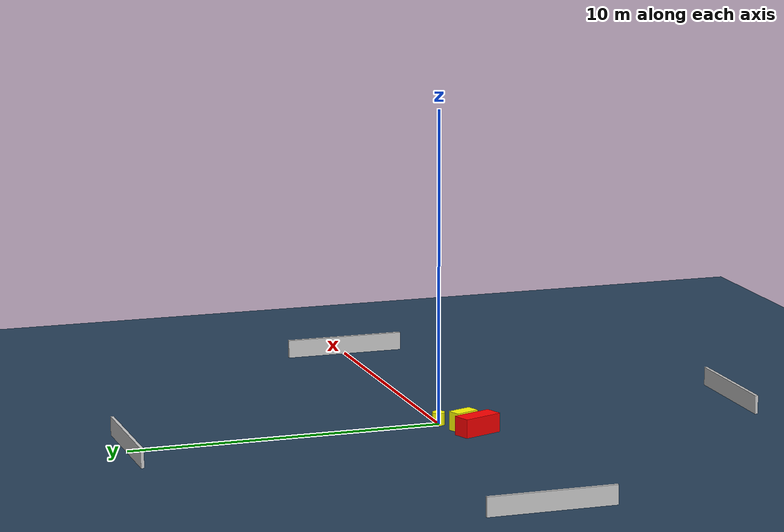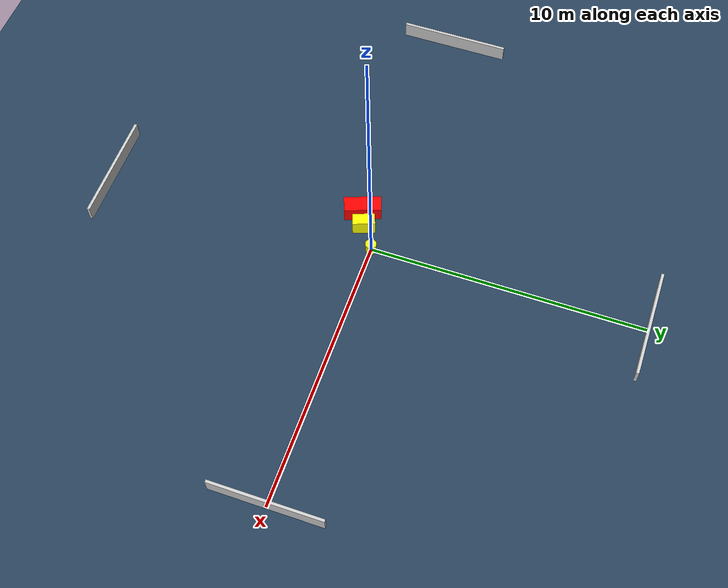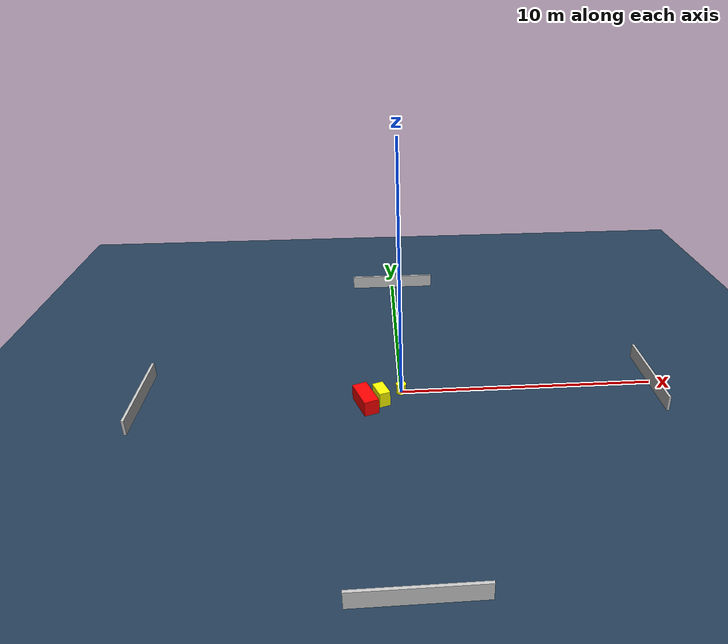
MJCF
<?xml version="1.0" ?>
<mujoco model="generated_environment">
  <option timestep="0.01" integrator="RK4" cone="elliptic"/>
  <default>
    <geom density="1"/>
  </default>
  <asset>
    <texture builtin="gradient" height="3072" name="skybox" rgb1="0.3 0.5 0.7" rgb2="0 0 0" type="skybox" width="512"/>
    <texture builtin="checker" height="300" name="groundplane" rgb1="0.2 0.3 0.4" rgb2="0.1 0.2 0.3" type="2d" width="300"/>
    <material name="groundplane" reflectance="0.2" texrepeat="5 5" texture="groundplane"/>
  </asset>
  <worldbody>
    <light dir="0 0 -1" directional="true" pos="0 0 1.5"/>
    <geom condim="3" friction="0.5 0.005 0.001" material="groundplane" name="floor" pos="0 0 0" size="0 0 0.05" type="plane"/>
    <body name="walls">
      <geom name="wall_1" condim="4" pos="-10.0 0.0 0.3" rgba="0.800000011920929 0.800000011920929 0.800000011920929 1.0" size="0.05 2.0 0.3" type="box"/>
      <geom name="wall_2" condim="4" pos="10.0 0.0 0.3" rgba="0.800000011920929 0.800000011920929 0.800000011920929 1.0" size="0.05 2.0 0.3" type="box"/>
      <geom name="wall_3" condim="4" pos="0.0 -10.0 0.3" rgba="0.800000011920929 0.800000011920929 0.800000011920929 1.0" size="2.0 0.05 0.3" type="box"/>
      <geom name="wall_4" condim="4" pos="0.0 10.0 0.3" rgba="0.800000011920929 0.800000011920929 0.800000011920929 1.0" size="2.0 0.05 0.3" type="box"/>
    </body>
    <body name="robot">
      <joint name="joint_x" type="slide" pos="0 0 0" axis="1 0 0"/>
      <joint name="joint_y" type="slide" pos="0 0 0" axis="0 1 0"/>
      <geom name="robot" type="cylinder" pos="0.0 0.0 0.2" size="0.2 0.2 0.0" mass="5.0" friction="1.0 0.005 0.0001" condim="4" rgba="1.0 1.0 0.0 1.0"/>
    </body>
    <body name="obstacle_1_movable">
      <geom name="obstacle_1_movable" condim="4" pos="-0.789689044042219 -0.5476797425373432 0.3" euler="0 0 109.9651428821795" friction="0.0 0.005 0.001" rgba="1.0 1.0 0.0 1.0" size="0.4030333993554165 0.21652559523470735 0.3" type="box" mass="0.1"/>
      <joint type="free"/>
    </body>
    <body name="obstacle_2_static">
      <geom name="obstacle_2_static" condim="4" pos="-1.3920906725403805 -0.8003204787137834 0.3" euler="0 0 20.409585658240196" friction="0.0 0.005 0.001" rgba="1.0 0.0 0.0 1.0" size="0.29094300779507054 0.6672436869064107 0.3" type="box"/>
    </body>
  </worldbody>
  <actuator>
    <motor name="actuator_x" joint="joint_x" gear="1" ctrlrange="-1 1"/>
    <motor name="actuator_y" joint="joint_y" gear="1" ctrlrange="-1 1"/>
  </actuator>
</mujoco>
